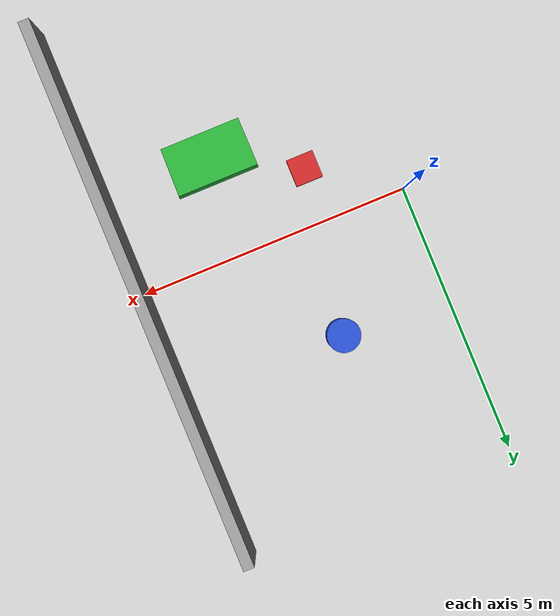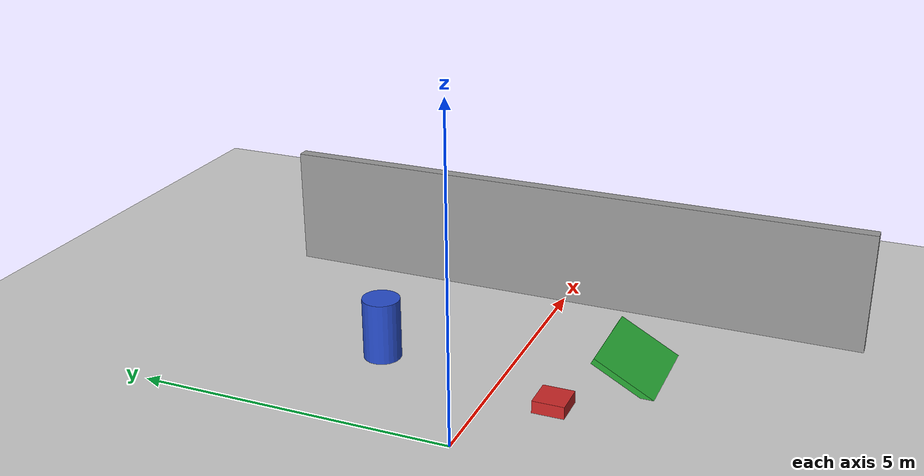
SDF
<?xml version="1.0" ?>
<sdf version="1.6">
  <world name="testing_lab">
    <include><uri>model://sun</uri></include>
    <include><uri>model://ground_plane</uri></include>

    <model name="front_wall">
      <pose>5.0 0 1.0 0 0 0</pose>
      <static>true</static>
      <link name="link">
        <collision name="c"><geometry><box><size>0.2 10 2.0</size></box></geometry></collision>
        <visual name="v">
          <geometry><box><size>0.2 10 2.0</size></box></geometry>
          <material><script><name>Gazebo/Grey</name></script></material>
        </visual>
      </link>
    </model>

    <model name="test_cylinder">
      <pose>2.0 2.0 0.5 0 0 0</pose>
      <static>true</static>
      <link name="link">
        <collision name="c"><geometry><cylinder><radius>0.3</radius><length>1.0</length></cylinder></geometry></collision>
        <visual name="v">
          <geometry><cylinder><radius>0.3</radius><length>1.0</length></cylinder></geometry>
          <material><script><name>Gazebo/Blue</name></script></material>
        </visual>
      </link>
    </model>

    <model name="ramp">
      <pose>3.0 -2.0 0.1 0.5 0 0</pose> <static>true</static>
      <link name="link">
        <collision name="c"><geometry><box><size>1.5 1.5 0.1</size></box></geometry></collision>
        <visual name="v">
          <geometry><box><size>1.5 1.5 0.1</size></box></geometry>
          <material><script><name>Gazebo/Green</name></script></material>
        </visual>
      </link>
    </model>

    <model name="step">
      <pose>1.5 -1.0 0.1 0 0 0</pose>
      <static>true</static>
      <link name="link">
        <collision name="c"><geometry><box><size>0.5 0.5 0.2</size></box></geometry></collision>
        <visual name="v">
          <geometry><box><size>0.5 0.5 0.2</size></box></geometry>
          <material><script><name>Gazebo/Red</name></script></material>
        </visual>
      </link>
    </model>
  </world>
</sdf>
